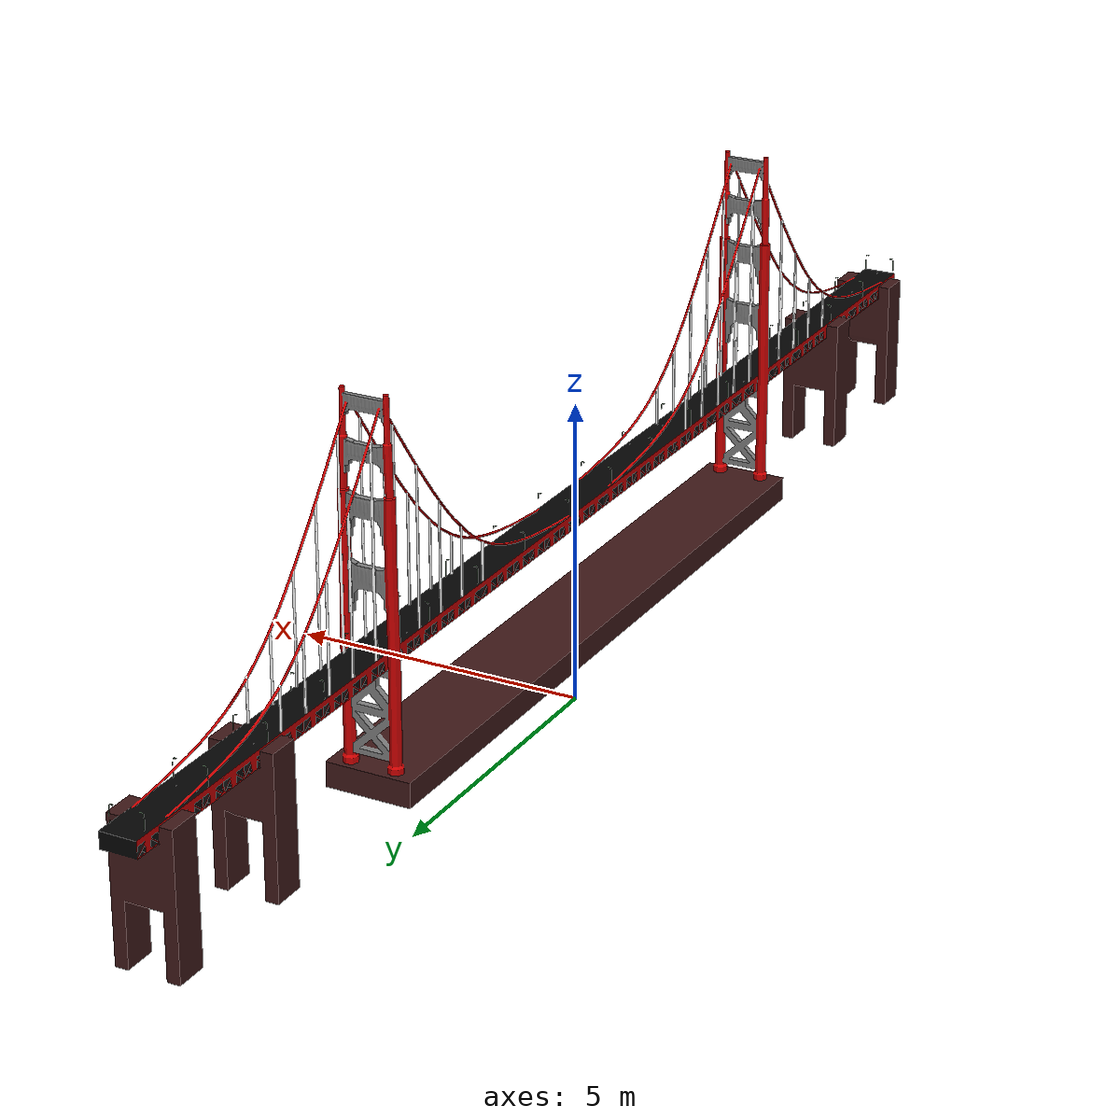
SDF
<?xml version="1.0" ?>
<sdf version="1.5">
  <model name="suspension_bridge">
    <pose>0 0 1 0 0 0</pose>
    <link name="link">
      <inertial>
        <mass>200.0</mass>
	<inertia>
         <ixx>400.2</ixx>       <!-- for a box: ixx = 0.083 * mass * (y*y + z*z) -->
         <ixy>0.0</ixy>         <!-- for a box: ixy = 0 -->
         <ixz>0.0</ixz>         <!-- for a box: ixz = 0 -->
         <iyy>400.8</iyy>       <!-- for a box: iyy = 0.083 * mass * (x*x + z*z) -->
         <iyz>0.0</iyz>         <!-- for a box: iyz = 0 -->
         <izz>800.6</izz>       <!-- for a box: izz = 0.083 * mass * (x*x + y*y) -->
        </inertia>
      </inertial>
      <visual name="visual">
        <geometry>
          <mesh>
            <uri>model://suspension_bridge/meshes/suspension_bridge.dae</uri>
          </mesh>
        </geometry>
      </visual>

      <collision name="collision">
       <geometry>
        <mesh>
         <uri>model://suspension_bridge/meshes/suspension_bridge.dae</uri>
        </mesh>
       </geometry>
      </collision>
    </link>
  </model>
</sdf>
